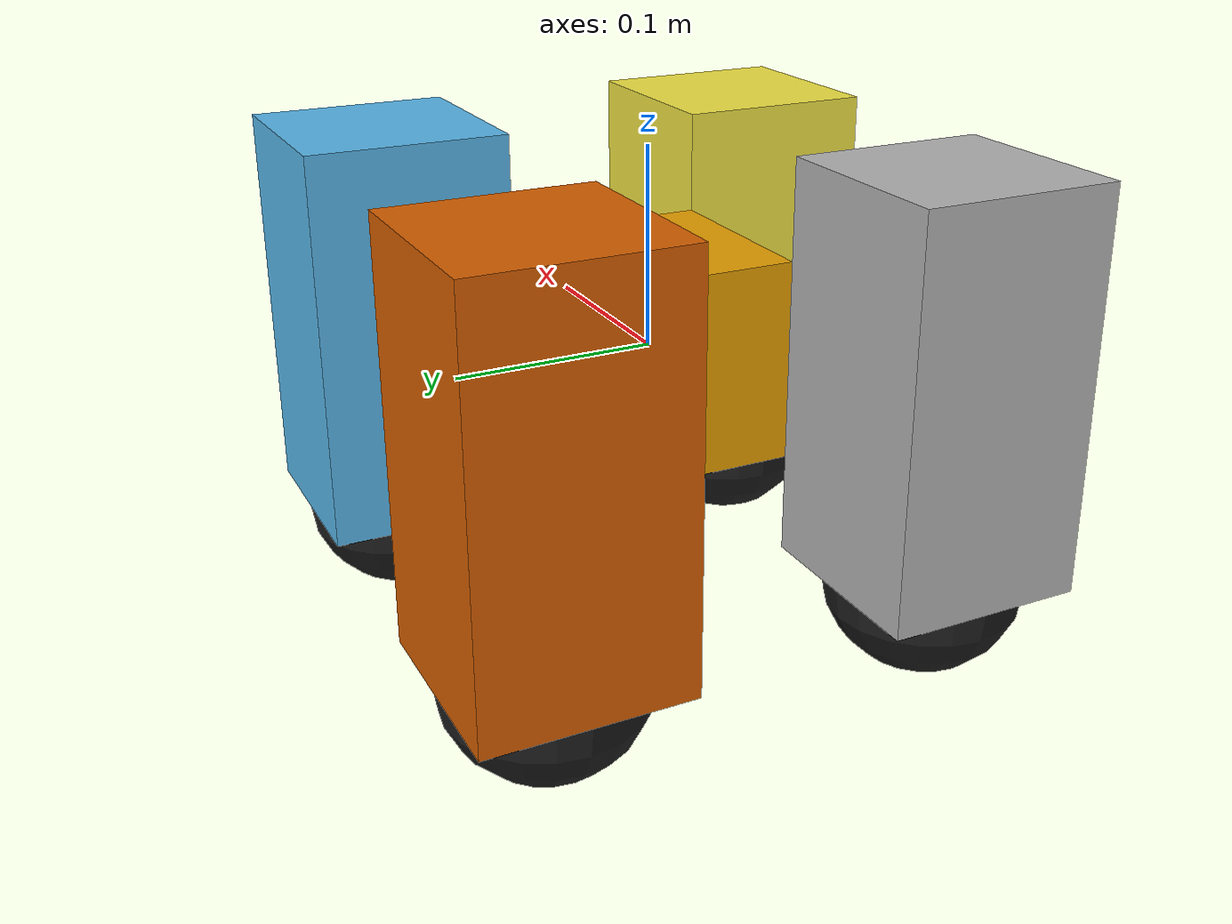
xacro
<?xml version="1.0" ?>
<robot name="myrobot" xmlns:xacro="http://ros.org/wiki/xacro">

    <!--- new_gazebo_version should be false by default because pinocchio needs it!-->
    <xacro:arg name="robot_name" default="myrobot"/>
    <xacro:arg name="new_gazebo_version" default="false"/>

    <xacro:include filename="$(find myrobot_description)/gazebo/gazebo.urdf.xacro">
        <xacro:arg name="task_period" value="$(arg task_period)"/>
	<xacro:arg name="robot_name" value="$(arg robot_name)"/>
    </xacro:include>

    <xacro:include filename="$(find myrobot_description)/urdfs/myleg.xacro"/>

    <link name="base_link">
   	<inertial>
		<origin xyz="0.0 0.0 0.0"/>
		<mass value="15" />
		<inertia  ixx="0.001" ixy="0.0"  ixz="0.0"  iyy="0.001"  iyz="0.0"  izz="0.001" />
	</inertial>
	<visual>
		<origin xyz="0 0.0 0.0" rpy="0 0 0"/>
		<geometry>
			<box size="0.1 0.1 0.1"/>
		</geometry>
	</visual>
	<collision>
		<origin  xyz="0 0.0 0.0 " rpy="0 0 0"/>
		<geometry>
			<box size="0.1 0.1 0.1"/>
		</geometry>
	</collision>
    </link>

    <!-- LEFT FRONT LEG -->
     <xacro:leg
    	name="lf"
    	parent="base_link"
    	robot_name="$(arg robot_name)">
    	<origin xyz="0.1 0.1 0.0" rpy="0 0 0"/>
    </xacro:leg>

    <!-- RIGHT FRONT LEG -->
    <xacro:leg
    	name="rf"
    	parent="base_link"
    	robot_name="$(arg robot_name)">
    	<origin xyz="0.1 -0.1 0.0" rpy="0 0 0"/>
    </xacro:leg>

    <!-- LEFT HIND LEG -->
     <xacro:leg
    	name="lh"
    	parent="base_link"
    	robot_name="$(arg robot_name)">
    	<origin xyz="-0.1 0.1 0.0" rpy="0 0 0"/>
    </xacro:leg>

    <!-- RIGHT HIND LEG -->
    <xacro:leg
    	name="rh"
    	parent="base_link"
    	robot_name="$(arg robot_name)">
    	<origin xyz="-0.1 -0.1 0.0" rpy="0 0 0"/>
    </xacro:leg>

</robot>

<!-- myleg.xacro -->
<robot xmlns:xacro="http://ros.org/wiki/xacro" name="solo">

    <!-- Things that are needed only for Gazebo (not the physical robot). These include sensor and controller plugin specifications -->
    <xacro:include filename="$(find myrobot_description)/urdfs/myleg.transmission.xacro"/>
    <xacro:include filename="$(find myrobot_description)/urdfs/myleg.gazebo.xacro"/>

    <!-- This macro has for purpose to define a leg -->
    <xacro:macro name="leg" params="name parent robot_name *origin ">

	<joint name="${name}_shoulder_pan_joint" type="revolute">
		<parent link="${parent}"/>
		<child link="${name}_lowerleg"/>
		<axis xyz="0 0 1"/>
		<xacro:insert_block name="origin"/>
		<limit effort="50" velocity="10.0" lower="-3.14" upper="3.14" />
	</joint>

	<link name="${name}_lowerleg">
		<inertial>
			<origin xyz="0.0 0.0 0.0"/>
			<mass value="2" />
			<inertia  ixx="0.001" ixy="0.0"  ixz="0.0"  iyy="0.001"  iyz="0.0"  izz="0.001" />
		</inertial>
			<visual>
			<origin xyz="0 0.0 0.0" rpy="0 0 0"/>
			<geometry>
				<box size="0.1 0.1 0.2"/>
			</geometry>
			</visual>
		<collision>
			<origin  xyz="0 0.0 0.0 " rpy="0 0 0"/>
			<geometry>
				<box size="0.1 0.1 0.2"/>
			</geometry>
		</collision>
	</link>

        <joint name="${name}_foot_fixed" type="fixed">
            <origin rpy="0 0 0" xyz="0 0 -0.1"/>
            <parent link="${name}_lowerleg"/>
            <child link="${name}_foot"/>
        </joint>

        <link name="${name}_foot">
            <visual>
                <origin rpy="0 0 0" xyz="0 0 0"/>
                <geometry>
                    <sphere radius="0.05"/>
                </geometry>
            </visual>
            <collision>
                <origin rpy="0 0 0" xyz="0 0 0"/>
                <geometry>
                    <sphere radius="0.05"/>
                </geometry>
            </collision>
        </link>

        <!-- Extensions -->
        <xacro:leg_transmission name="${name}"/>
        <xacro:leg_gazebo name="${name}" robot_name="${robot_name}"/>
    </xacro:macro>
</robot>
